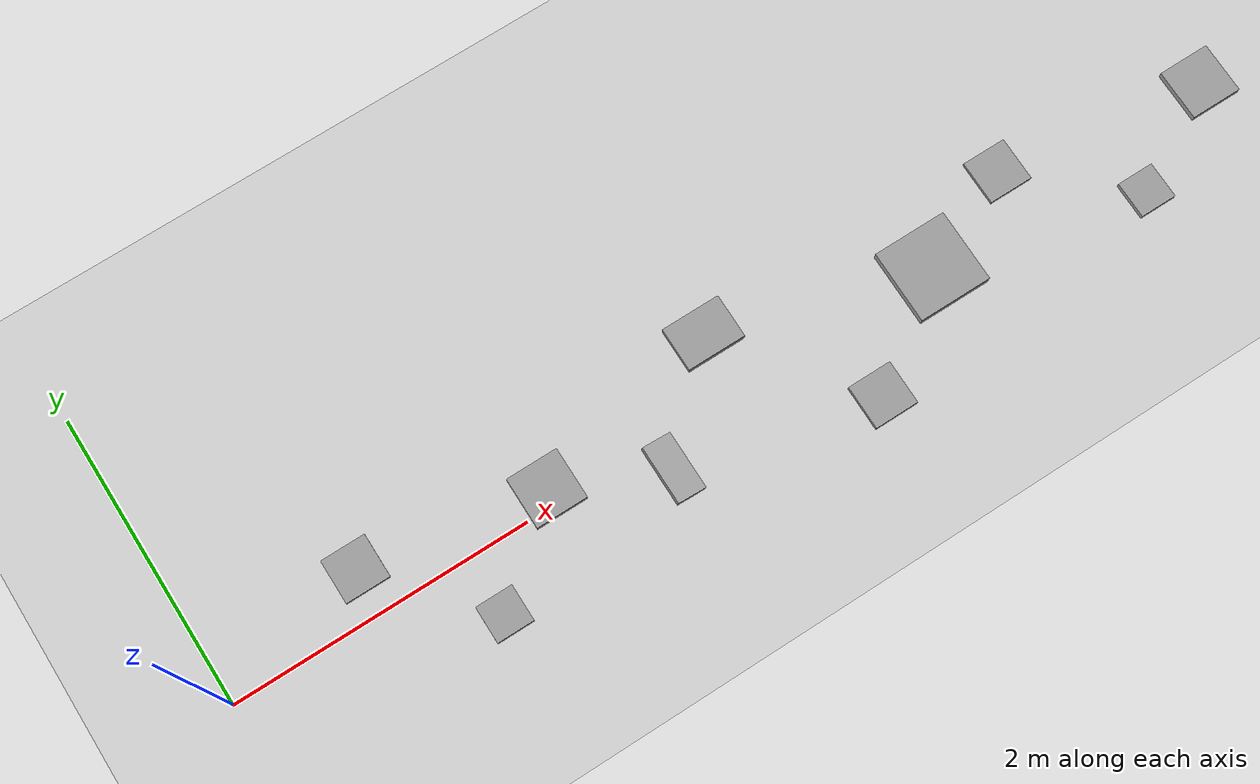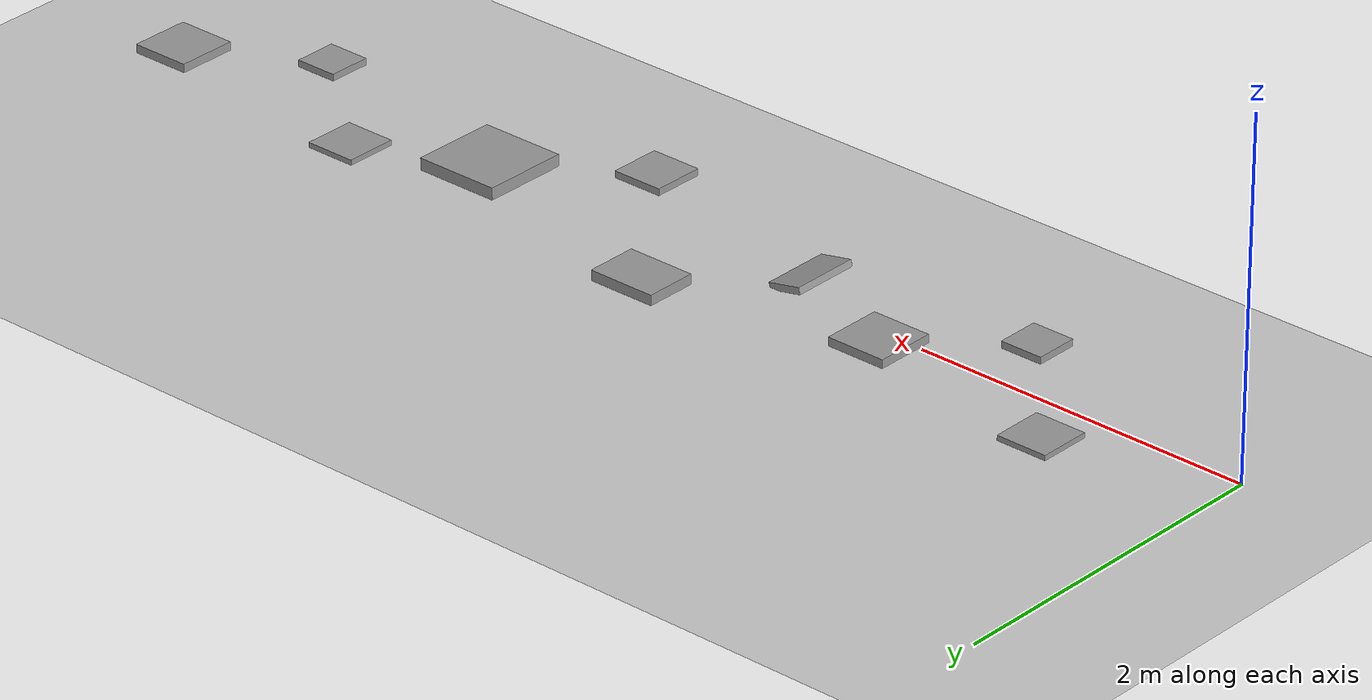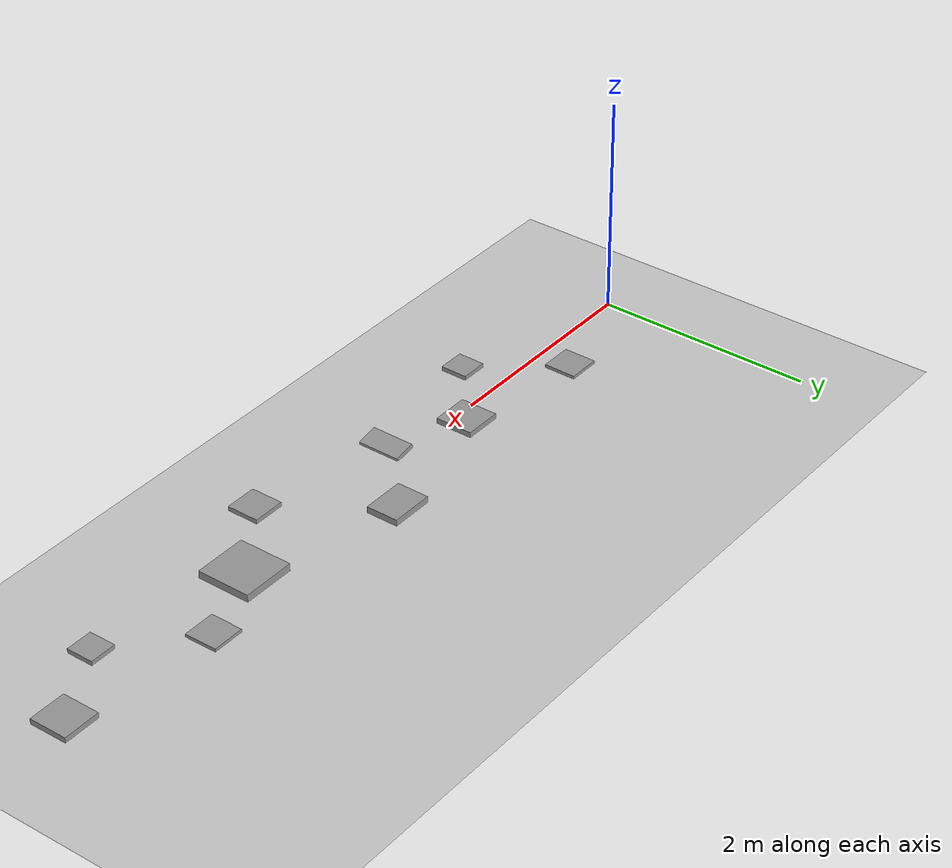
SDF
<?xml version="1.0" ?>
<!-- 崎岖地形：随机散布的矮凸起，模拟不平地面，测试抗扰动能力 -->
<sdf version="1.5">
    <world name="rough">
        <physics type="ode">
            <type>world</type>
            <max_step_size>0.001</max_step_size>
            <real_time_update_rate>1000</real_time_update_rate>
            <iters>500</iters>
        </physics>

        <include><uri>model://sun</uri></include>
        <include><uri>model://ground_plane</uri></include>

        <!-- 碎石凸起（不平地面） -->
        <model name="rock_1"><static>true</static><pose>1.0 0.3 0.015 0 0 0</pose>
            <link name="l"><collision name="c"><geometry><box><size>0.3 0.3 0.03</size></box></geometry></collision>
            <visual name="v"><geometry><box><size>0.3 0.3 0.03</size></box></geometry>
            <material><script><uri>file://media/materials/scripts/gazebo.material</uri>
            <name>Gazebo/Grey</name></script></material></visual></link></model>

        <model name="rock_2"><static>true</static><pose>1.6 -0.4 0.02 0 0 0</pose>
            <link name="l"><collision name="c"><geometry><box><size>0.25 0.25 0.04</size></box></geometry></collision>
            <visual name="v"><geometry><box><size>0.25 0.25 0.04</size></box></geometry>
            <material><script><uri>file://media/materials/scripts/gazebo.material</uri>
            <name>Gazebo/Grey</name></script></material></visual></link></model>

        <model name="rock_3"><static>true</static><pose>2.2 0.1 0.025 0 0 0</pose>
            <link name="l"><collision name="c"><geometry><box><size>0.35 0.35 0.05</size></box></geometry></collision>
            <visual name="v"><geometry><box><size>0.35 0.35 0.05</size></box></geometry>
            <material><script><uri>file://media/materials/scripts/gazebo.material</uri>
            <name>Gazebo/Grey</name></script></material></visual></link></model>

        <model name="rock_4"><static>true</static><pose>2.9 -0.2 0.02 0 0.2 0</pose>
            <link name="l"><collision name="c"><geometry><box><size>0.2 0.4 0.04</size></box></geometry></collision>
            <visual name="v"><geometry><box><size>0.2 0.4 0.04</size></box></geometry>
            <material><script><uri>file://media/materials/scripts/gazebo.material</uri>
            <name>Gazebo/Grey</name></script></material></visual></link></model>

        <model name="rock_5"><static>true</static><pose>3.5 0.4 0.03 0 0 0</pose>
            <link name="l"><collision name="c"><geometry><box><size>0.4 0.3 0.06</size></box></geometry></collision>
            <visual name="v"><geometry><box><size>0.4 0.3 0.06</size></box></geometry>
            <material><script><uri>file://media/materials/scripts/gazebo.material</uri>
            <name>Gazebo/Grey</name></script></material></visual></link></model>

        <model name="rock_6"><static>true</static><pose>4.2 -0.5 0.02 0 0 0</pose>
            <link name="l"><collision name="c"><geometry><box><size>0.3 0.3 0.04</size></box></geometry></collision>
            <visual name="v"><geometry><box><size>0.3 0.3 0.04</size></box></geometry>
            <material><script><uri>file://media/materials/scripts/gazebo.material</uri>
            <name>Gazebo/Grey</name></script></material></visual></link></model>

        <model name="rock_7"><static>true</static><pose>4.9 0.0 0.035 0 0 0</pose>
            <link name="l"><collision name="c"><geometry><box><size>0.5 0.5 0.07</size></box></geometry></collision>
            <visual name="v"><geometry><box><size>0.5 0.5 0.07</size></box></geometry>
            <material><script><uri>file://media/materials/scripts/gazebo.material</uri>
            <name>Gazebo/Grey</name></script></material></visual></link></model>

        <model name="rock_8"><static>true</static><pose>5.6 0.3 0.015 0 0 0</pose>
            <link name="l"><collision name="c"><geometry><box><size>0.3 0.3 0.03</size></box></geometry></collision>
            <visual name="v"><geometry><box><size>0.3 0.3 0.03</size></box></geometry>
            <material><script><uri>file://media/materials/scripts/gazebo.material</uri>
            <name>Gazebo/Grey</name></script></material></visual></link></model>

        <model name="rock_9"><static>true</static><pose>6.3 -0.3 0.02 0 0 0</pose>
            <link name="l"><collision name="c"><geometry><box><size>0.25 0.25 0.04</size></box></geometry></collision>
            <visual name="v"><geometry><box><size>0.25 0.25 0.04</size></box></geometry>
            <material><script><uri>file://media/materials/scripts/gazebo.material</uri>
            <name>Gazebo/Grey</name></script></material></visual></link></model>

        <model name="rock_10"><static>true</static><pose>7.0 0.1 0.025 0 0 0</pose>
            <link name="l"><collision name="c"><geometry><box><size>0.35 0.35 0.05</size></box></geometry></collision>
            <visual name="v"><geometry><box><size>0.35 0.35 0.05</size></box></geometry>
            <material><script><uri>file://media/materials/scripts/gazebo.material</uri>
            <name>Gazebo/Grey</name></script></material></visual></link></model>

    </world>
</sdf>
